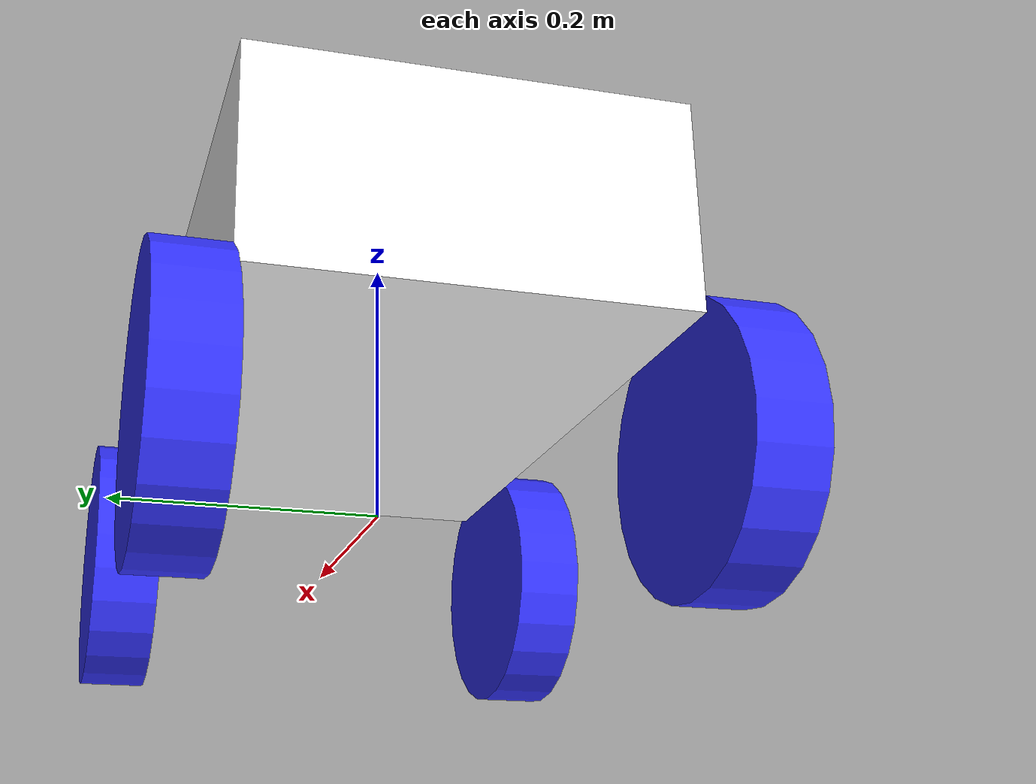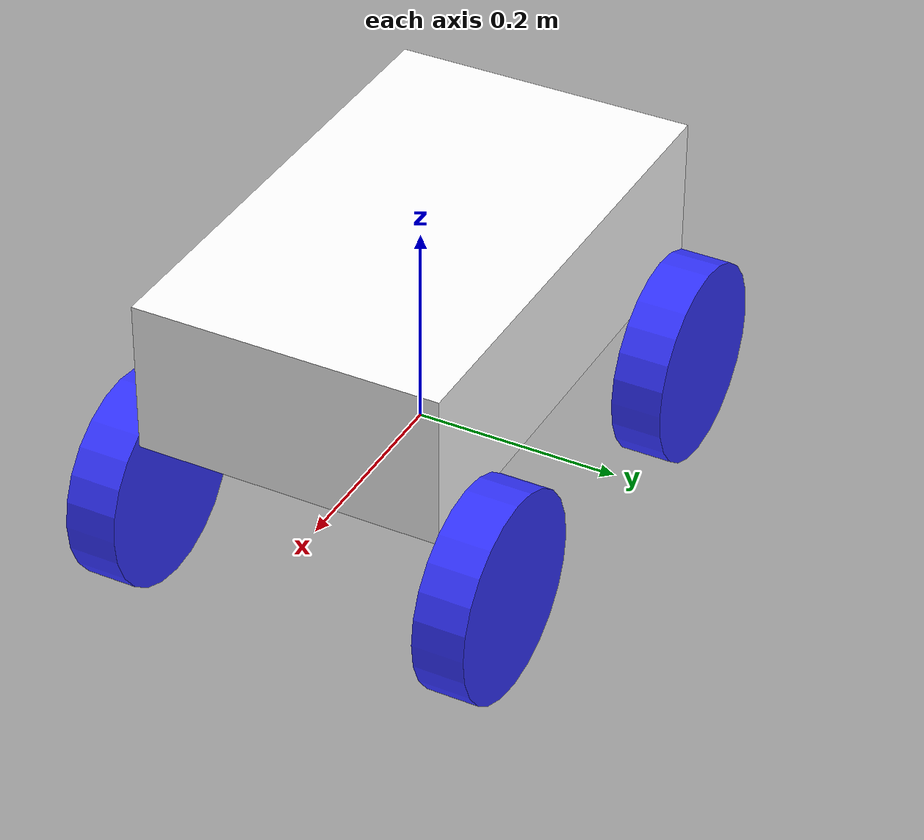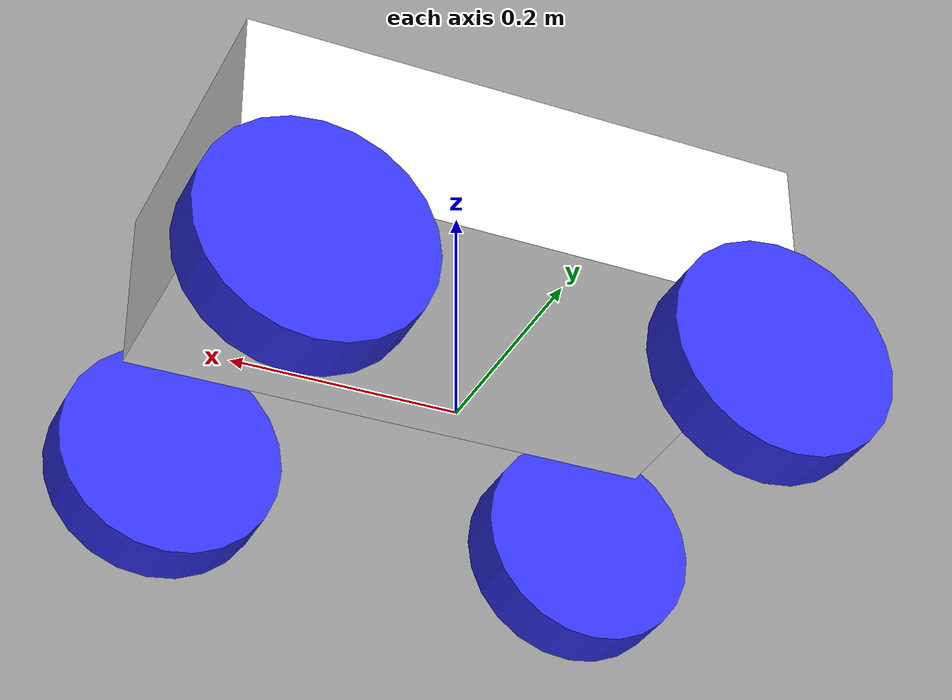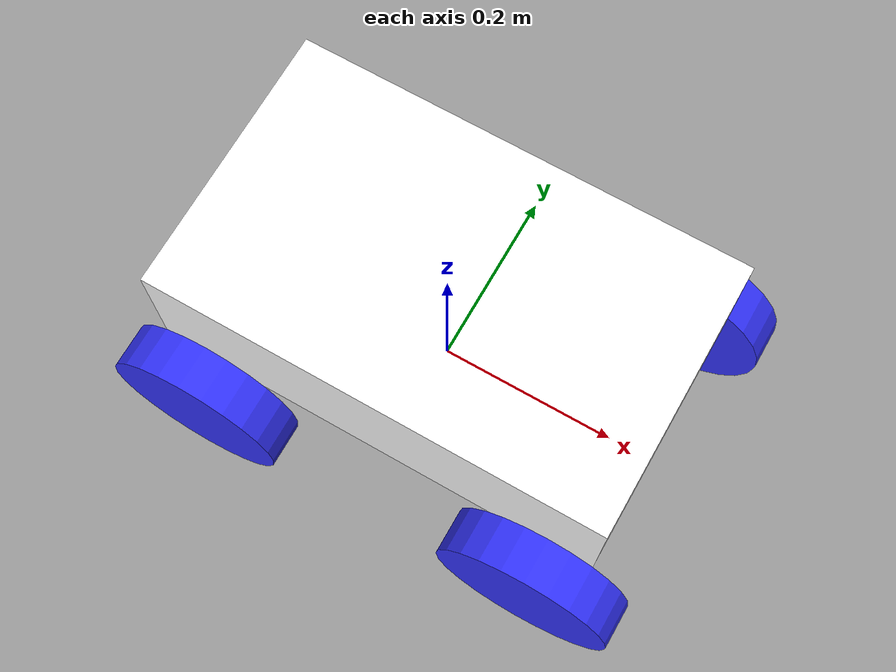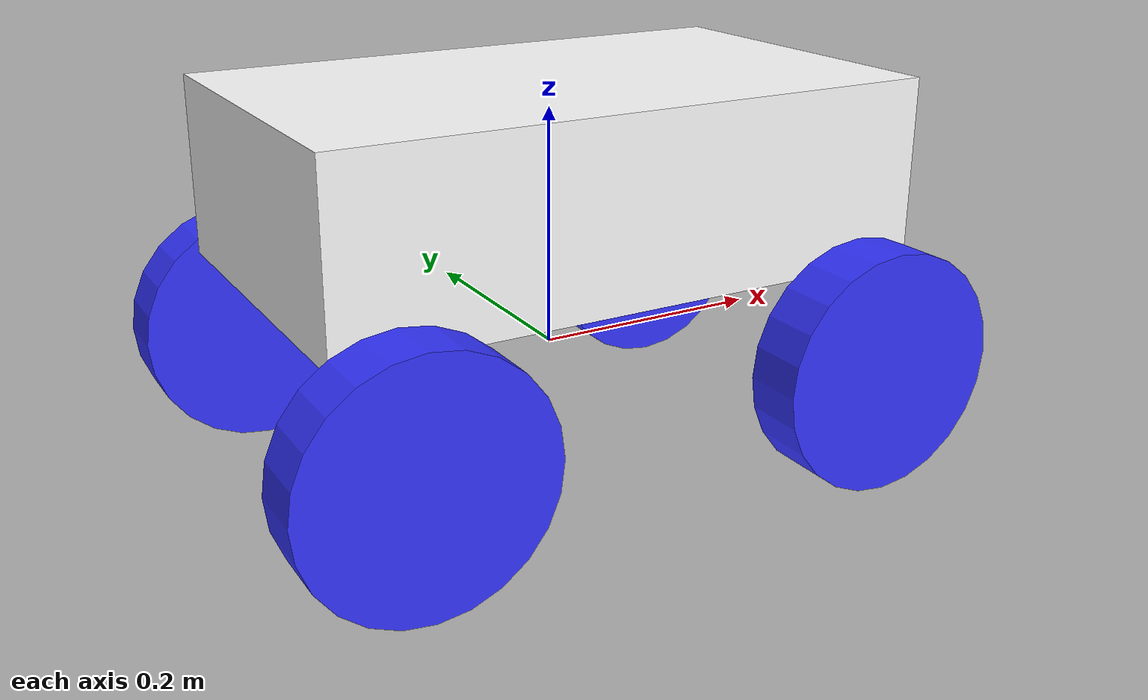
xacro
<?xml version="1.0"?>
<robot xmlns:xacro="http://www.ros.org/wiki/xacro">

    <xacro:include filename="inertial_macros.xacro" />

    <xacro:property name="wheel_radius" value="0.1" />
    <xacro:property name="wheel_offset_center" value="0.2" />

    <material name="white">
        <color rgba="1 1 1 1" />
    </material>

    <material name="orange">
        <color rgba="1 0.3 0.1 1" />
    </material>

    <material name="blue">
        <color rgba="0.2 0.2 1 1" />
    </material>

    <material name="black">
        <color rgba="0 0 0 1" />
    </material>

    <!-- BASE LINK -->

    <link name="base_link">
    </link>

    <joint name="chassis_joint" type="fixed">
        <parent link="base_link" />
        <child link="chassis" />
        <origin xyz="0 0 0.15" />
    </joint>

    <link name="chassis">
        <visual>
            <origin xyz="0 0 0" />
            <geometry>
                <box size="0.5 0.3 0.15" />
            </geometry>
            <material name="white" />
        </visual>
        <collision>
            <origin xyz="0 0 0" />
            <geometry>
                <box size="0.5 0.3 0.15" />
            </geometry>
        </collision>
        <xacro:inertial_box mass="3" x="0.5" y="0.3" z="0.15">
            <origin xyz="0 0 0" rpy="0 0 0" />
        </xacro:inertial_box>
    </link>

    <gazebo
        reference="chassis">
        <material>Gazebo/White</material>
        <mu1>0.001</mu1>
        <mu2>0.001</mu2>
    </gazebo>

    <!-- LEFT WHEEL LINK -->

    <joint name="left_wheel_joint" type="continuous">
        <parent link="base_link" />
        <child link="left_wheel" />
        <origin xyz="-${wheel_offset_center} 0.175 0" rpy="-${pi/2} 0 0" />
        <axis xyz="0 0 1" />
    </joint>

    <link name="left_wheel">
        <visual>
            <geometry>
                <cylinder radius="${wheel_radius}" length="0.05" />
            </geometry>
            <material name="blue" />
        </visual>
        <collision>
            <geometry>
                <cylinder radius="${wheel_radius}" length="0.05" />
            </geometry>
        </collision>
        <xacro:inertial_cylinder mass="0.1" length="0.05" radius="${wheel_radius}">
            <origin xyz="0 0 0" rpy="0 0 0" />
        </xacro:inertial_cylinder>
    </link>

    <gazebo
        reference="left_wheel">
        <material>Gazebo/Blue</material>

    </gazebo>

    <!-- RIGHT WHEEL LINK -->

    <joint name="right_wheel_joint"
        type="continuous">
        <parent link="base_link" />
        <child link="right_wheel" />
        <origin xyz="-${wheel_offset_center} -0.175 0" rpy="${pi/2} 0 0" />
        <axis xyz="0 0 -1" />
    </joint>

    <link name="right_wheel">
        <visual>
            <geometry>
                <cylinder radius="${wheel_radius}" length="0.05" />
            </geometry>
            <material name="blue" />
        </visual>
        <collision>
            <geometry>
                <cylinder radius="${wheel_radius}" length="0.05" />
            </geometry>
        </collision>
        <xacro:inertial_cylinder mass="0.1" length="0.05" radius="${wheel_radius}">
            <origin xyz="0 0 0" rpy="0 0 0" />
        </xacro:inertial_cylinder>
    </link>

    <gazebo
        reference="right_wheel">
        <material>Gazebo/Blue</material>
    </gazebo>

    <!-- FRONT LEFT WHEEL LINK-->
    <joint name="front_left_wheel_joint" type="fixed">
        <parent link="base_link" />
        <child link="front_left_wheel" />
        <origin xyz="${wheel_offset_center} 0.175 0" rpy="-${pi/2} 0 0" />
        <axis xyz="0 0 1" />
    </joint>

    <link name="front_left_wheel">
        <visual>
            <geometry>
                <cylinder radius="${wheel_radius}" length="0.05" />
            </geometry>
            <material name="blue" />
        </visual>
        <collision>
            <geometry>
                <cylinder radius="${wheel_radius}" length="0.05" />
            </geometry>
        </collision>
        <xacro:inertial_cylinder mass="0.1" length="0.05" radius="${wheel_radius}">
            <origin xyz="0 0 0" rpy="0 0 0" />
        </xacro:inertial_cylinder>
    </link>

    <gazebo
        reference="front_left_wheel">
        <material>Gazebo/Blue</material>
        <mu1>0.001</mu1>
        <mu2>0.001</mu2>
    </gazebo>

    <!-- FRONT RIGHT WHEEL LINK-->
    <joint name="front_right_wheel_joint"
        type="fixed">
        <parent link="base_link" />
        <child link="front_right_wheel" />
        <origin xyz="${wheel_offset_center} -0.175 0" rpy="${pi/2} 0 0" />
        <axis xyz="0 0 -1" />
    </joint>

    <link name="front_right_wheel">
        <visual>
            <geometry>
                <cylinder radius="${wheel_radius}" length="0.05" />
            </geometry>
            <material name="blue" />
        </visual>
        <collision>
            <geometry>
                <cylinder radius="${wheel_radius}" length="0.05" />
            </geometry>
        </collision>
        <xacro:inertial_cylinder mass="0.1" length="0.05" radius="${wheel_radius}">
            <origin xyz="0 0 0" rpy="0 0 0" />
        </xacro:inertial_cylinder>
    </link>

    <gazebo
        reference="front_right_wheel">
        <material>Gazebo/Blue</material>
        <mu1>0.001</mu1>
        <mu2>0.001</mu2>
    </gazebo>

</robot>

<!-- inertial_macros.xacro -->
<robot xmlns:xacro="http://www.ros.org/wiki/xacro" >

    <!-- Specify some standard inertial calculations https://en.wikipedia.org/wiki/List_of_moments_of_inertia -->
    <!-- These make use of xacro's mathematical functionality -->

    <xacro:macro name="inertial_box" params="mass x y z *origin">
        <inertial>
            <xacro:insert_block name="origin"/>
            <mass value="${mass}" />
            <inertia ixx="${(1/12) * mass * (y*y+z*z)}" ixy="0.0" ixz="0.0"
                    iyy="${(1/12) * mass * (x*x+z*z)}" iyz="0.0"
                    izz="${(1/12) * mass * (x*x+y*y)}" />
        </inertial>
    </xacro:macro>

    <xacro:macro name="inertial_cylinder" params="mass length radius *origin">
        <inertial>
            <xacro:insert_block name="origin"/>
            <mass value="${mass}" />
            <inertia ixx="${(1/12) * mass * (3*radius*radius + length*length)}" ixy="0.0" ixz="0.0"
                    iyy="${(1/12) * mass * (3*radius*radius + length*length)}" iyz="0.0"
                    izz="${(1/2) * mass * (radius*radius)}" />
        </inertial>
    </xacro:macro>

</robot>
